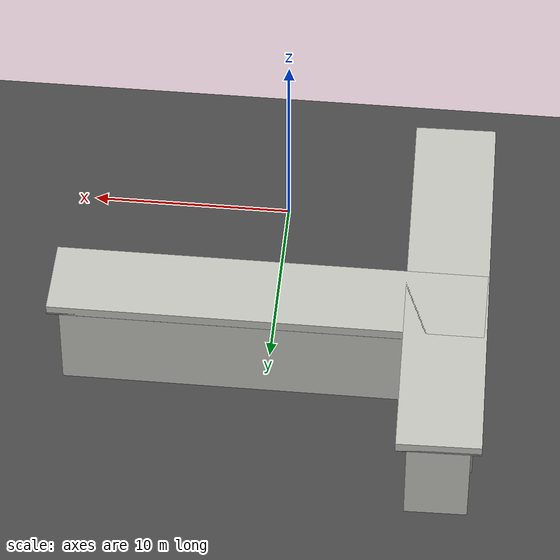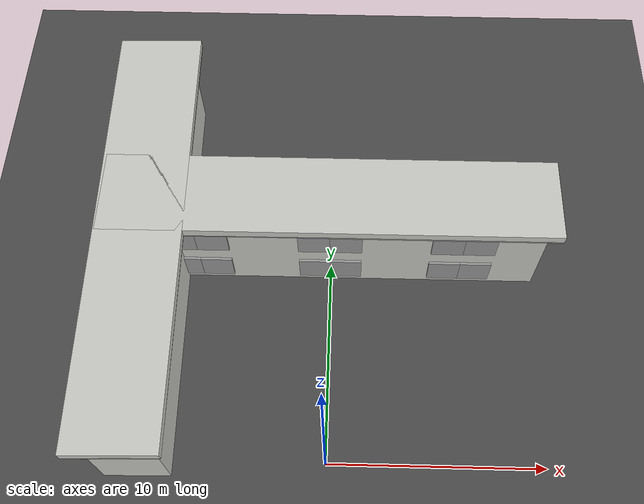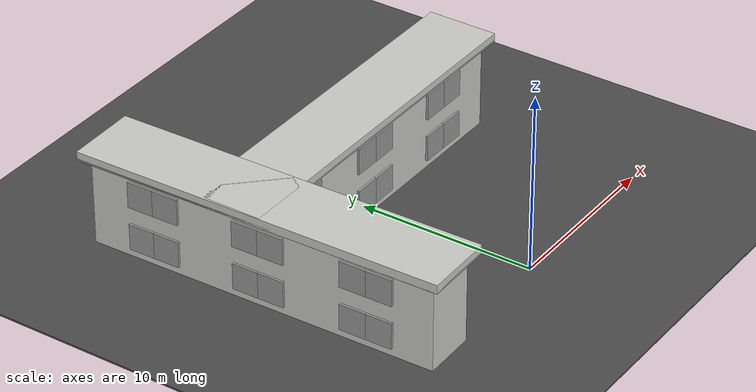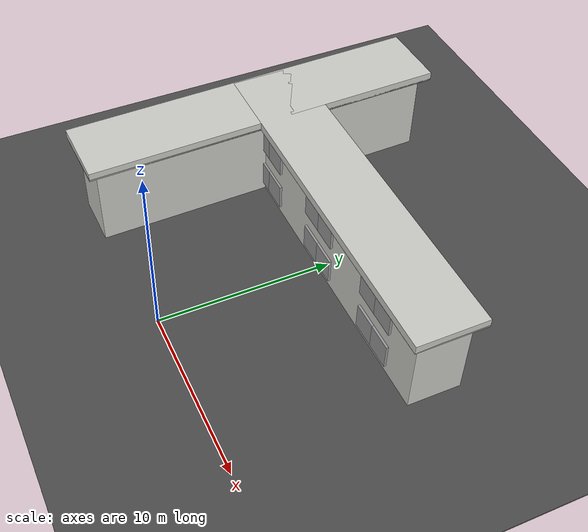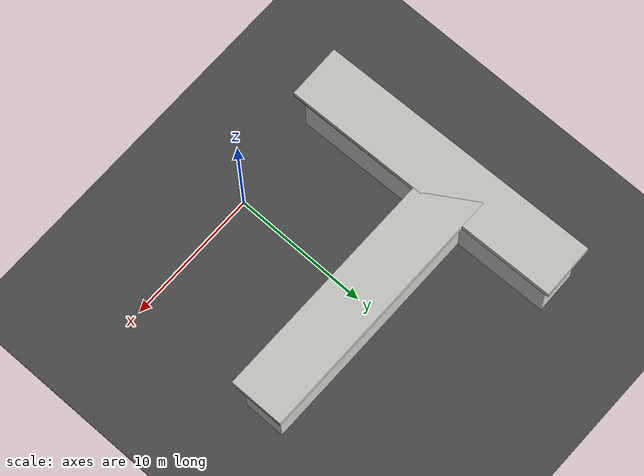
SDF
<sdf version="1.6">
 <world name="default">
  <model name="asphalt_plane">
   <pose>0.012562 0.029805 0 0 -0 0</pose>
   <static>1</static>
   <link name="link">
    <collision name="collision"><geometry><box><size>105.392 74.469 0.1</size></box></geometry></collision>
    <visual name="visual">
     <cast_shadows>0</cast_shadows>
     <geometry><box><size>105.392 74.469 0.1</size></box></geometry>
     <material>
      <script>
       <uri>model://asphalt_plane/materials/scripts</uri>
       <uri>model://asphalt_plane/materials/textures</uri>
       <name>vrc/asphalt</name>
      </script>
     </material>
    </visual>
   </link>
  </model>
  <model name="k_building_clone">
   <pose>-0.013988 10.8554 0 0 -0 0</pose>
   <link name="Floor_0">
    <collision name="Floor_0_Collision">
     <geometry><box><size>21 4 0.1</size></box></geometry>
     <pose>0 0 0.05 0 -0 0</pose>
    </collision>
    <visual name="Floor_0_Visual">
     <pose>0 0 0.05 0 -0 0</pose>
     <geometry><box><size>21 4 0.1</size></box></geometry>
     <material>
      <script><uri>file://media/materials/scripts/gazebo.material</uri><name>Gazebo/Grey</name></script>
      <ambient>1 1 1 1</ambient>
     </material>
    </visual>
    <pose>0 0 5 0 -0 0</pose>
   </link>
   <link name="Wall_0">
    <collision name="Wall_0_Collision">
     <geometry><box><size>20 3 5</size></box></geometry>
     <pose>0 0 2.5 0 -0 0</pose>
    </collision>
    <visual name="Wall_0_Visual">
     <pose>0 0 2.5 0 -0 0</pose>
     <geometry><box><size>20 3 5</size></box></geometry>
     <material>
      <script><uri>file://media/materials/scripts/gazebo.material</uri><name>Gazebo/CeilingTiled</name></script>
      <ambient>1 1 1 1</ambient>
     </material>
    </visual>
   </link>
   <link name="Wall_3">
    <collision name="Wall_3_Collision">
     <geometry><box><size>21 4 0.5</size></box></geometry>
     <pose>0 0 0.25 0 -0 0</pose>
    </collision>
    <visual name="Wall_3_Visual">
     <pose>0 0 0.25 0 -0 0</pose>
     <geometry><box><size>21 4 0.5</size></box></geometry>
     <material>
      <script><uri>file://media/materials/scripts/gazebo.material</uri><name>Gazebo/CeilingTiled</name></script>
      <ambient>0.435294 0.796078 0.67451 1</ambient>
     </material>
    </visual>
    <pose>0 0 5 0 -0 0</pose>
   </link>
   <link name="Window_0">
    <collision name="Window_0_Collision">
     <geometry><box><size>1.5 0.17 1.5</size></box></geometry>
     <pose>0 0 0.75 0 -0 0</pose>
    </collision>
    <visual name="Window_0_Visual">
     <pose>0 0 0.75 0 -0 0</pose>
     <geometry><box><size>1.5 0.17 1.5</size></box></geometry>
     <material>
      <script><uri>file://media/materials/scripts/gazebo.material</uri><name>Gazebo/Grey</name></script>
     </material>
    </visual>
    <pose>-7 -1.55 0.5 0 -0 0</pose>
   </link>
   <link name="Window_1">
    <collision name="Window_1_Collision">
     <geometry><box><size>1.5 0.17 1.5</size></box></geometry>
     <pose>0 0 0.75 0 -0 0</pose>
    </collision>
    <visual name="Window_1_Visual">
     <pose>0 0 0.75 0 -0 0</pose>
     <geometry><box><size>1.5 0.17 1.5</size></box></geometry>
     <material>
      <script><uri>file://media/materials/scripts/gazebo.material</uri><name>Gazebo/Grey</name></script>
     </material>
    </visual>
    <pose>-5.5 -1.55 0.5 0 -0 0</pose>
   </link>
   <link name="Window_10">
    <collision name="Window_10_Collision">
     <geometry><box><size>1.5 0.17 1.5</size></box></geometry>
     <pose>0 0 0.75 0 -0 0</pose>
    </collision>
    <visual name="Window_10_Visual">
     <pose>0 0 0.75 0 -0 0</pose>
     <geometry><box><size>1.5 0.17 1.5</size></box></geometry>
     <material>
      <script><uri>file://media/materials/scripts/gazebo.material</uri><name>Gazebo/Grey</name></script>
     </material>
    </visual>
    <pose>5.5 -1.55 3 0 -0 0</pose>
   </link>
   <link name="Window_11">
    <collision name="Window_11_Collision">
     <geometry><box><size>1.5 0.17 1.5</size></box></geometry>
     <pose>0 0 0.75 0 -0 0</pose>
    </collision>
    <visual name="Window_11_Visual">
     <pose>0 0 0.75 0 -0 0</pose>
     <geometry><box><size>1.5 0.17 1.5</size></box></geometry>
     <material>
      <script><uri>file://media/materials/scripts/gazebo.material</uri><name>Gazebo/Grey</name></script>
     </material>
    </visual>
    <pose>7 -1.55 3 0 -0 0</pose>
   </link>
   <link name="Window_2">
    <collision name="Window_2_Collision">
     <geometry><box><size>1.5 0.17 1.5</size></box></geometry>
     <pose>0 0 0.75 0 -0 0</pose>
    </collision>
    <visual name="Window_2_Visual">
     <pose>0 0 0.75 0 -0 0</pose>
     <geometry><box><size>1.5 0.17 1.5</size></box></geometry>
     <material>
      <script><uri>file://media/materials/scripts/gazebo.material</uri><name>Gazebo/Grey</name></script>
     </material>
    </visual>
    <pose>-0.75 -1.55 0.5 0 -0 0</pose>
   </link>
   <link name="Window_3">
    <collision name="Window_3_Collision">
     <geometry><box><size>1.5 0.17 1.5</size></box></geometry>
     <pose>0 0 0.75 0 -0 0</pose>
    </collision>
    <visual name="Window_3_Visual">
     <pose>0 0 0.75 0 -0 0</pose>
     <geometry><box><size>1.5 0.17 1.5</size></box></geometry>
     <material>
      <script><uri>file://media/materials/scripts/gazebo.material</uri><name>Gazebo/Grey</name></script>
     </material>
    </visual>
    <pose>0.75 -1.55 0.5 0 -0 0</pose>
   </link>
   <link name="Window_4">
    <collision name="Window_4_Collision">
     <geometry><box><size>1.5 0.17 1.5</size></box></geometry>
     <pose>0 0 0.75 0 -0 0</pose>
    </collision>
    <visual name="Window_4_Visual">
     <pose>0 0 0.75 0 -0 0</pose>
     <geometry><box><size>1.5 0.17 1.5</size></box></geometry>
     <material>
      <script><uri>file://media/materials/scripts/gazebo.material</uri><name>Gazebo/Grey</name></script>
     </material>
    </visual>
    <pose>5.5 -1.55 0.5 0 -0 0</pose>
   </link>
   <link name="Window_5">
    <collision name="Window_5_Collision">
     <geometry><box><size>1.5 0.17 1.5</size></box></geometry>
     <pose>0 0 0.75 0 -0 0</pose>
    </collision>
    <visual name="Window_5_Visual">
     <pose>0 0 0.75 0 -0 0</pose>
     <geometry><box><size>1.5 0.17 1.5</size></box></geometry>
     <material>
      <script><uri>file://media/materials/scripts/gazebo.material</uri><name>Gazebo/Grey</name></script>
     </material>
    </visual>
    <pose>7 -1.55 0.5 0 -0 0</pose>
   </link>
   <link name="Window_6">
    <collision name="Window_6_Collision">
     <geometry><box><size>1.5 0.17 1.5</size></box></geometry>
     <pose>0 0 0.75 0 -0 0</pose>
    </collision>
    <visual name="Window_6_Visual">
     <pose>0 0 0.75 0 -0 0</pose>
     <geometry><box><size>1.5 0.17 1.5</size></box></geometry>
     <material>
      <script><uri>file://media/materials/scripts/gazebo.material</uri><name>Gazebo/Grey</name></script>
     </material>
    </visual>
    <pose>-7 -1.55 3 0 -0 0</pose>
   </link>
   <link name="Window_7">
    <collision name="Window_7_Collision">
     <geometry><box><size>1.5 0.17 1.5</size></box></geometry>
     <pose>0 0 0.75 0 -0 0</pose>
    </collision>
    <visual name="Window_7_Visual">
     <pose>0 0 0.75 0 -0 0</pose>
     <geometry><box><size>1.5 0.17 1.5</size></box></geometry>
     <material>
      <script><uri>file://media/materials/scripts/gazebo.material</uri><name>Gazebo/Grey</name></script>
     </material>
    </visual>
    <pose>-5.5 -1.55 3 0 -0 0</pose>
   </link>
   <link name="Window_8">
    <collision name="Window_8_Collision">
     <geometry><box><size>1.5 0.17 1.5</size></box></geometry>
     <pose>0 0 0.75 0 -0 0</pose>
    </collision>
    <visual name="Window_8_Visual">
     <pose>0 0 0.75 0 -0 0</pose>
     <geometry><box><size>1.5 0.17 1.5</size></box></geometry>
     <material>
      <script><uri>file://media/materials/scripts/gazebo.material</uri><name>Gazebo/Grey</name></script>
     </material>
    </visual>
    <pose>-0.75 -1.55 3 0 -0 0</pose>
   </link>
   <link name="Window_9">
    <collision name="Window_9_Collision">
     <geometry><box><size>1.5 0.17 1.5</size></box></geometry>
     <pose>0 0 0.75 0 -0 0</pose>
    </collision>
    <visual name="Window_9_Visual">
     <pose>0 0 0.75 0 -0 0</pose>
     <geometry><box><size>1.5 0.17 1.5</size></box></geometry>
     <material>
      <script><uri>file://media/materials/scripts/gazebo.material</uri><name>Gazebo/Grey</name></script>
     </material>
    </visual>
    <pose>0.75 -1.55 3 0 -0 0</pose>
   </link>
   <static>1</static>
  </model>
  <model name="k_building_0">
   <pose>-8.57663 9.3004 0 0 0 -1.55066</pose>
   <link name="Floor_0">
    <collision name="Floor_0_Collision">
     <geometry><box><size>21 4 0.1</size></box></geometry>
     <pose>0 0 0.05 0 -0 0</pose>
    </collision>
    <visual name="Floor_0_Visual">
     <pose>0 0 0.05 0 -0 0</pose>
     <geometry><box><size>21 4 0.1</size></box></geometry>
     <material>
      <script><uri>file://media/materials/scripts/gazebo.material</uri><name>Gazebo/Grey</name></script>
      <ambient>1 1 1 1</ambient>
     </material>
    </visual>
    <pose>0 0 5 0 -0 0</pose>
   </link>
   <link name="Wall_0">
    <collision name="Wall_0_Collision">
     <geometry><box><size>20 3 5</size></box></geometry>
     <pose>0 0 2.5 0 -0 0</pose>
    </collision>
    <visual name="Wall_0_Visual">
     <pose>0 0 2.5 0 -0 0</pose>
     <geometry><box><size>20 3 5</size></box></geometry>
     <material>
      <script><uri>file://media/materials/scripts/gazebo.material</uri><name>Gazebo/CeilingTiled</name></script>
      <ambient>1 1 1 1</ambient>
     </material>
    </visual>
   </link>
   <link name="Wall_3">
    <collision name="Wall_3_Collision">
     <geometry><box><size>21 4 0.5</size></box></geometry>
     <pose>0 0 0.25 0 -0 0</pose>
    </collision>
    <visual name="Wall_3_Visual">
     <pose>0 0 0.25 0 -0 0</pose>
     <geometry><box><size>21 4 0.5</size></box></geometry>
     <material>
      <script><uri>file://media/materials/scripts/gazebo.material</uri><name>Gazebo/CeilingTiled</name></script>
      <ambient>0.435294 0.796078 0.67451 1</ambient>
     </material>
    </visual>
    <pose>0 0 5 0 -0 0</pose>
   </link>
   <link name="Window_0">
    <collision name="Window_0_Collision">
     <geometry><box><size>1.5 0.17 1.5</size></box></geometry>
     <pose>0 0 0.75 0 -0 0</pose>
    </collision>
    <visual name="Window_0_Visual">
     <pose>0 0 0.75 0 -0 0</pose>
     <geometry><box><size>1.5 0.17 1.5</size></box></geometry>
     <material>
      <script><uri>file://media/materials/scripts/gazebo.material</uri><name>Gazebo/Grey</name></script>
     </material>
    </visual>
    <pose>-7 -1.55 0.5 0 -0 0</pose>
   </link>
   <link name="Window_1">
    <collision name="Window_1_Collision">
     <geometry><box><size>1.5 0.17 1.5</size></box></geometry>
     <pose>0 0 0.75 0 -0 0</pose>
    </collision>
    <visual name="Window_1_Visual">
     <pose>0 0 0.75 0 -0 0</pose>
     <geometry><box><size>1.5 0.17 1.5</size></box></geometry>
     <material>
      <script><uri>file://media/materials/scripts/gazebo.material</uri><name>Gazebo/Grey</name></script>
     </material>
    </visual>
    <pose>-5.5 -1.55 0.5 0 -0 0</pose>
   </link>
   <link name="Window_10">
    <collision name="Window_10_Collision">
     <geometry><box><size>1.5 0.17 1.5</size></box></geometry>
     <pose>0 0 0.75 0 -0 0</pose>
    </collision>
    <visual name="Window_10_Visual">
     <pose>0 0 0.75 0 -0 0</pose>
     <geometry><box><size>1.5 0.17 1.5</size></box></geometry>
     <material>
      <script><uri>file://media/materials/scripts/gazebo.material</uri><name>Gazebo/Grey</name></script>
     </material>
    </visual>
    <pose>5.5 -1.55 3 0 -0 0</pose>
   </link>
   <link name="Window_11">
    <collision name="Window_11_Collision">
     <geometry><box><size>1.5 0.17 1.5</size></box></geometry>
     <pose>0 0 0.75 0 -0 0</pose>
    </collision>
    <visual name="Window_11_Visual">
     <pose>0 0 0.75 0 -0 0</pose>
     <geometry><box><size>1.5 0.17 1.5</size></box></geometry>
     <material>
      <script><uri>file://media/materials/scripts/gazebo.material</uri><name>Gazebo/Grey</name></script>
     </material>
    </visual>
    <pose>7 -1.55 3 0 -0 0</pose>
   </link>
   <link name="Window_2">
    <collision name="Window_2_Collision">
     <geometry><box><size>1.5 0.17 1.5</size></box></geometry>
     <pose>0 0 0.75 0 -0 0</pose>
    </collision>
    <visual name="Window_2_Visual">
     <pose>0 0 0.75 0 -0 0</pose>
     <geometry><box><size>1.5 0.17 1.5</size></box></geometry>
     <material>
      <script><uri>file://media/materials/scripts/gazebo.material</uri><name>Gazebo/Grey</name></script>
     </material>
    </visual>
    <pose>-0.75 -1.55 0.5 0 -0 0</pose>
   </link>
   <link name="Window_3">
    <collision name="Window_3_Collision">
     <geometry><box><size>1.5 0.17 1.5</size></box></geometry>
     <pose>0 0 0.75 0 -0 0</pose>
    </collision>
    <visual name="Window_3_Visual">
     <pose>0 0 0.75 0 -0 0</pose>
     <geometry><box><size>1.5 0.17 1.5</size></box></geometry>
     <material>
      <script><uri>file://media/materials/scripts/gazebo.material</uri><name>Gazebo/Grey</name></script>
     </material>
    </visual>
    <pose>0.75 -1.55 0.5 0 -0 0</pose>
   </link>
   <link name="Window_4">
    <collision name="Window_4_Collision">
     <geometry><box><size>1.5 0.17 1.5</size></box></geometry>
     <pose>0 0 0.75 0 -0 0</pose>
    </collision>
    <visual name="Window_4_Visual">
     <pose>0 0 0.75 0 -0 0</pose>
     <geometry><box><size>1.5 0.17 1.5</size></box></geometry>
     <material>
      <script><uri>file://media/materials/scripts/gazebo.material</uri><name>Gazebo/Grey</name></script>
     </material>
    </visual>
    <pose>5.5 -1.55 0.5 0 -0 0</pose>
   </link>
   <link name="Window_5">
    <collision name="Window_5_Collision">
     <geometry><box><size>1.5 0.17 1.5</size></box></geometry>
     <pose>0 0 0.75 0 -0 0</pose>
    </collision>
    <visual name="Window_5_Visual">
     <pose>0 0 0.75 0 -0 0</pose>
     <geometry><box><size>1.5 0.17 1.5</size></box></geometry>
     <material>
      <script><uri>file://media/materials/scripts/gazebo.material</uri><name>Gazebo/Grey</name></script>
     </material>
    </visual>
    <pose>7 -1.55 0.5 0 -0 0</pose>
   </link>
   <link name="Window_6">
    <collision name="Window_6_Collision">
     <geometry><box><size>1.5 0.17 1.5</size></box></geometry>
     <pose>0 0 0.75 0 -0 0</pose>
    </collision>
    <visual name="Window_6_Visual">
     <pose>0 0 0.75 0 -0 0</pose>
     <geometry><box><size>1.5 0.17 1.5</size></box></geometry>
     <material>
      <script><uri>file://media/materials/scripts/gazebo.material</uri><name>Gazebo/Grey</name></script>
     </material>
    </visual>
    <pose>-7 -1.55 3 0 -0 0</pose>
   </link>
   <link name="Window_7">
    <collision name="Window_7_Collision">
     <geometry><box><size>1.5 0.17 1.5</size></box></geometry>
     <pose>0 0 0.75 0 -0 0</pose>
    </collision>
    <visual name="Window_7_Visual">
     <pose>0 0 0.75 0 -0 0</pose>
     <geometry><box><size>1.5 0.17 1.5</size></box></geometry>
     <material>
      <script><uri>file://media/materials/scripts/gazebo.material</uri><name>Gazebo/Grey</name></script>
     </material>
    </visual>
    <pose>-5.5 -1.55 3 0 -0 0</pose>
   </link>
   <link name="Window_8">
    <collision name="Window_8_Collision">
     <geometry><box><size>1.5 0.17 1.5</size></box></geometry>
     <pose>0 0 0.75 0 -0 0</pose>
    </collision>
    <visual name="Window_8_Visual">
     <pose>0 0 0.75 0 -0 0</pose>
     <geometry><box><size>1.5 0.17 1.5</size></box></geometry>
     <material>
      <script><uri>file://media/materials/scripts/gazebo.material</uri><name>Gazebo/Grey</name></script>
     </material>
    </visual>
    <pose>-0.75 -1.55 3 0 -0 0</pose>
   </link>
   <link name="Window_9">
    <collision name="Window_9_Collision">
     <geometry><box><size>1.5 0.17 1.5</size></box></geometry>
     <pose>0 0 0.75 0 -0 0</pose>
    </collision>
    <visual name="Window_9_Visual">
     <pose>0 0 0.75 0 -0 0</pose>
     <geometry><box><size>1.5 0.17 1.5</size></box></geometry>
     <material>
      <script><uri>file://media/materials/scripts/gazebo.material</uri><name>Gazebo/Grey</name></script>
     </material>
    </visual>
    <pose>0.75 -1.55 3 0 -0 0</pose>
   </link>
   <static>1</static>
  </model>
 </world>
</sdf>
